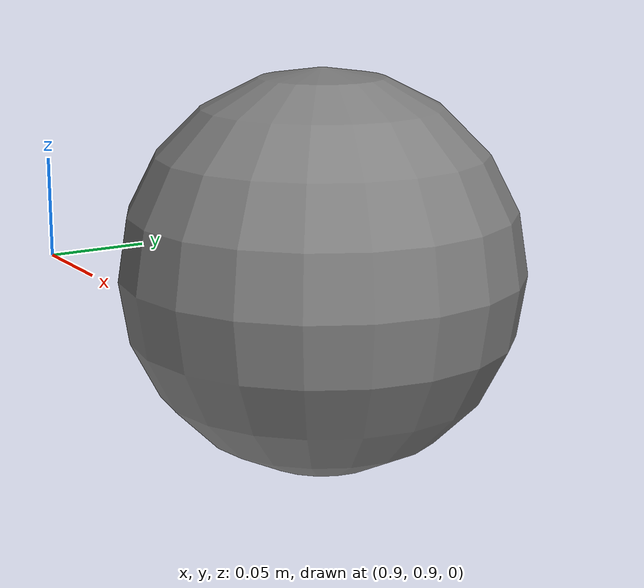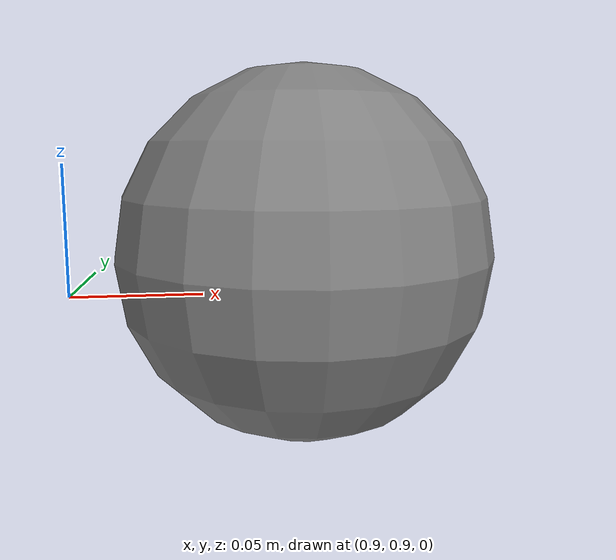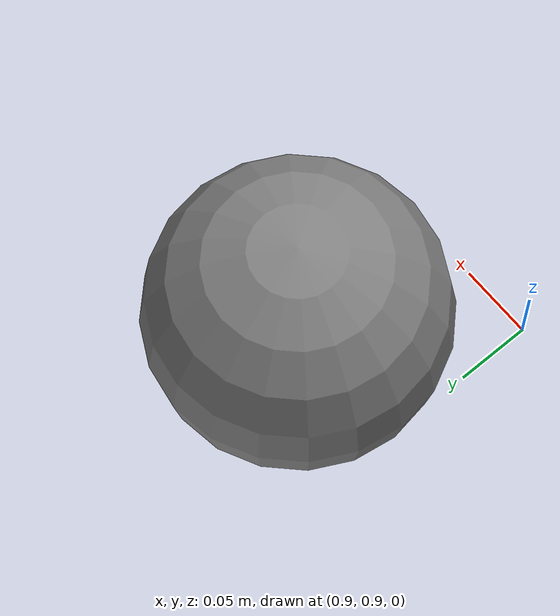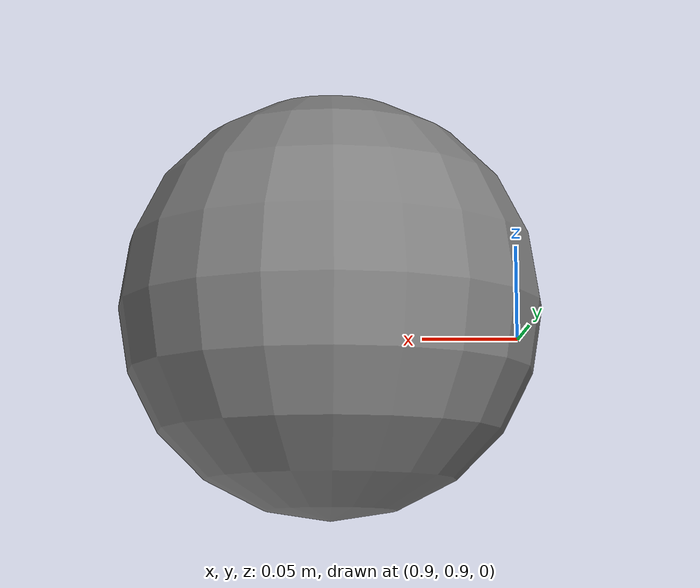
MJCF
<mujoco>
                <worldbody>
                    <body name="b">
                        <frame pos="1 0 0">
                            <frame pos="0 1 0">
                                <geom name="fg" type="sphere" size="0.1"/>
                            </frame>
                        </frame>
                    </body>
                </worldbody>
            </mujoco>
